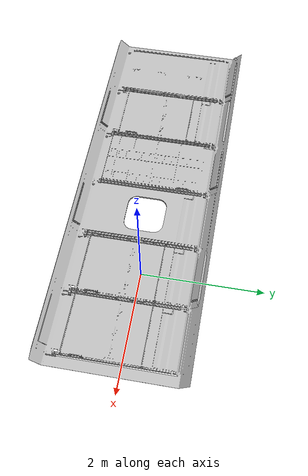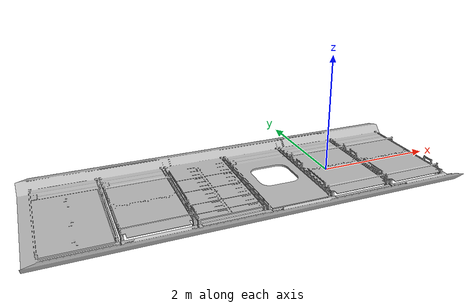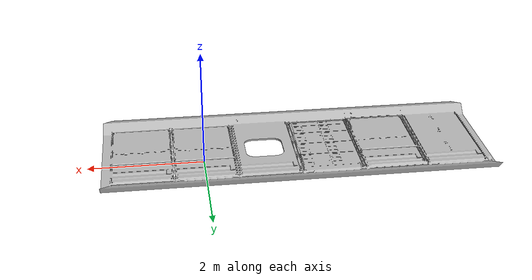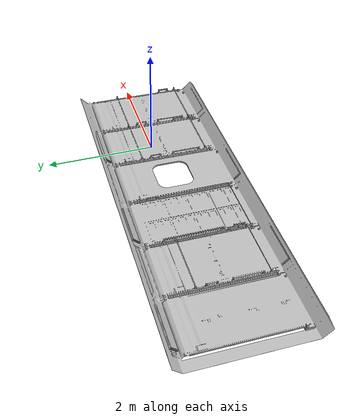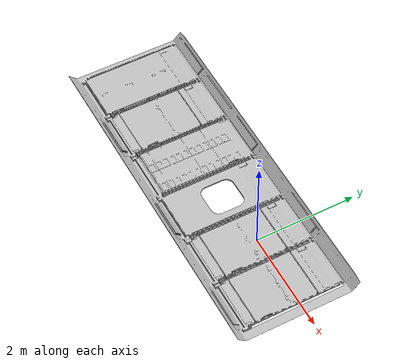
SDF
<?xml version="1.0"?>
<sdf version="1.4">
  <world name="iss_quarter">
    <scene>
      <ambient>0 0 0 1</ambient>
      <shadows>0</shadows>
      <grid>1</grid>
    </scene>

    <physics type="ode">
      <max_step_size>0.001</max_step_size>
      <real_time_factor>1</real_time_factor>
      <real_time_update_rate>1000</real_time_update_rate>
      <gravity>0 0 0</gravity>
      <ode>
        <solver>
          <type>quick</type>
          <iters>20</iters>
          <sor>1.3</sor>
        </solver>
        <constraints>
          <cfm>0.0000000001</cfm>
          <erp>0.1</erp>
          <contact_max_correcting_vel>1.0</contact_max_correcting_vel>
          <contact_surface_layer>0.01</contact_surface_layer>
        </constraints>
      </ode>
    </physics>

    <include>
      <uri>model://iss_quarter</uri>
    </include>

    <!-- A global light source -->
    <light type="point" name="point_white1">
      <cast_shadows>0</cast_shadows>
      <pose>2.6 .3 3 0 0 0</pose>
      <diffuse>0.8 0.8 0.8 1</diffuse>
      <specular>.1 .1 .1 1</specular>
      <attenuation>
        <range>20</range>
        <constant>0.2</constant>
        <linear>0.1</linear>
        <quadratic>0.0</quadratic>
      </attenuation>
    </light>
    <light type="point" name="point_white2">
      <cast_shadows>0</cast_shadows>
      <pose>-2.6 .3 3 0 0 0</pose>
      <diffuse>0.3 0.3 0.3 1</diffuse>
      <specular>.1 .1 .1 1</specular>
      <attenuation>
        <range>20</range>
        <constant>0.2</constant>
        <linear>0.1</linear>
        <quadratic>0.0</quadratic>
      </attenuation>
    </light>

  </world>
</sdf>

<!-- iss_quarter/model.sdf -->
<sdf version="1.5">
  <model name="ISS (Quarter)">
    <static>true</static>
    <link name="body">
      <pose>-7.98 -3.51 1.25 1.57 0 3.14</pose>
      <inertial>
        <mass>1000</mass>
        <inertia>
          <ixx>100</ixx>
          <ixy>0</ixy>
          <ixz>0</ixz>
          <iyy>100</iyy>
          <iyz>0</iyz>
          <izz>100</izz>
        </inertia>
      </inertial>
      <collision name="ISS_Surface">
        <geometry>
          <mesh>
            <uri>model://iss/meshes/US_Lab_ISS_quarter.dae</uri>
          </mesh>
        </geometry>
      </collision>
      <visual name="ISS_Visual">
        <geometry>
          <mesh>
            <uri>model://iss/meshes//US_Lab_ISS_quarter.dae</uri>
          </mesh>
        </geometry>
      </visual>
    </link>
  </model>
</sdf>
